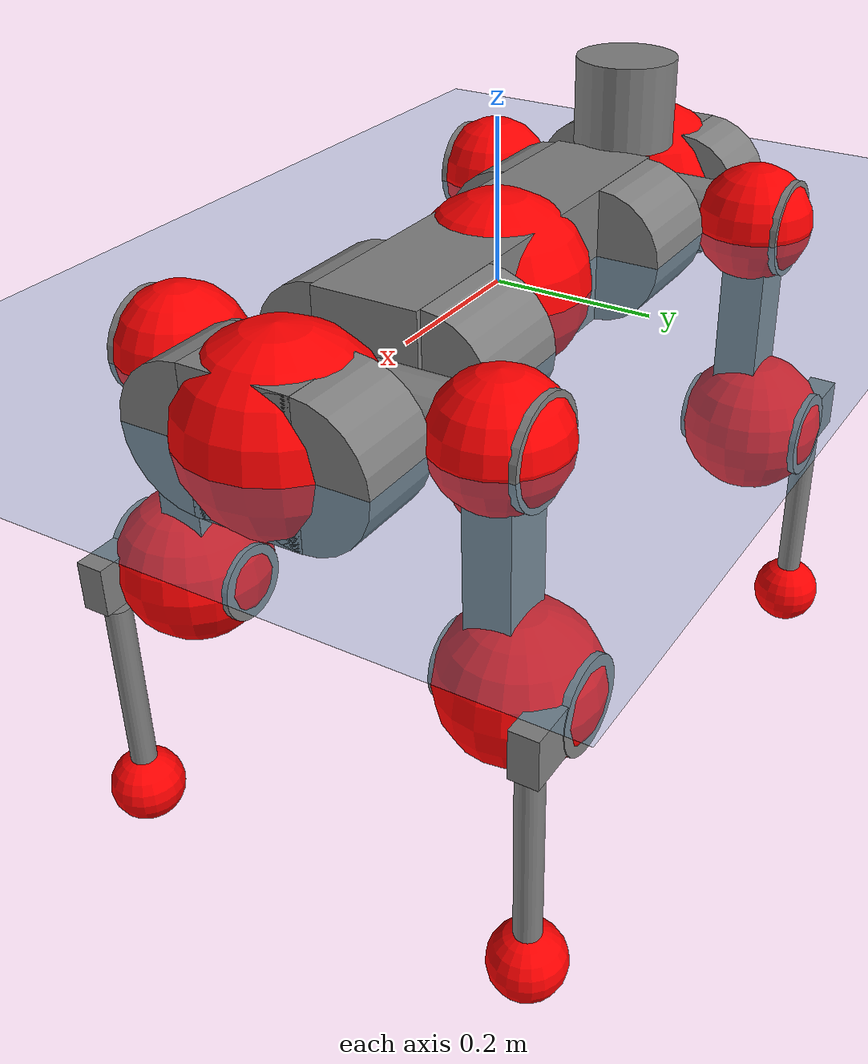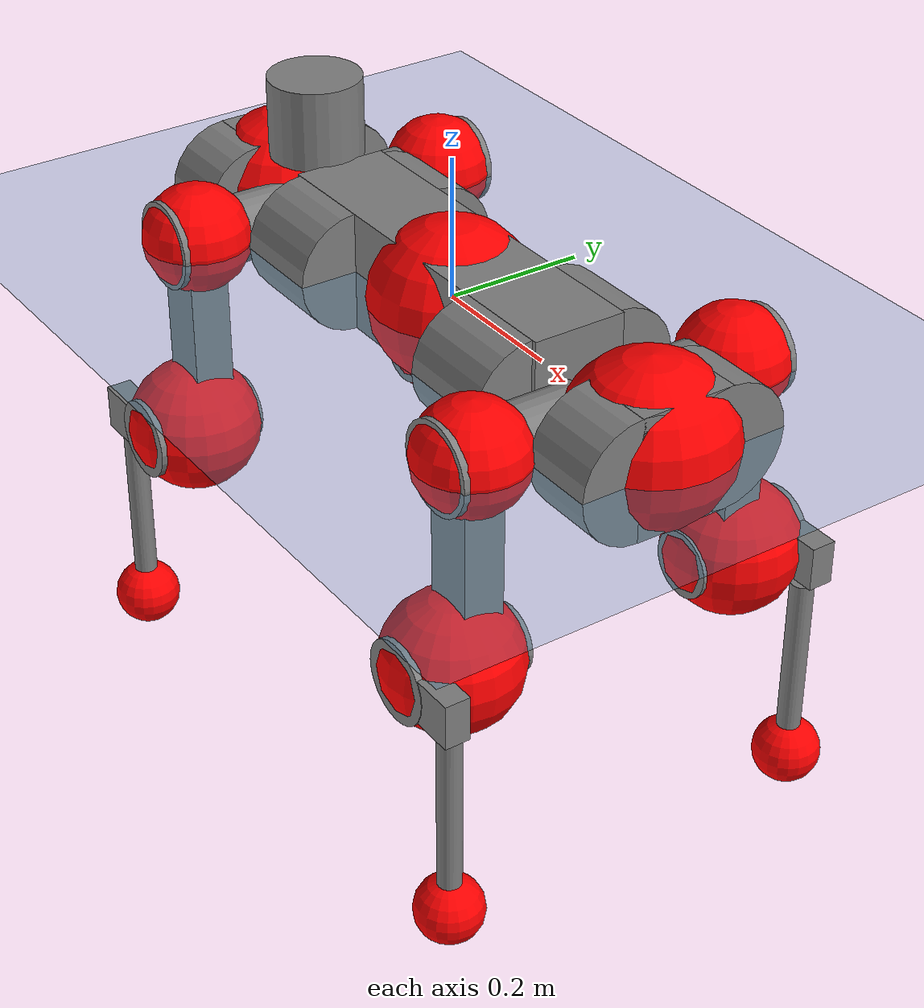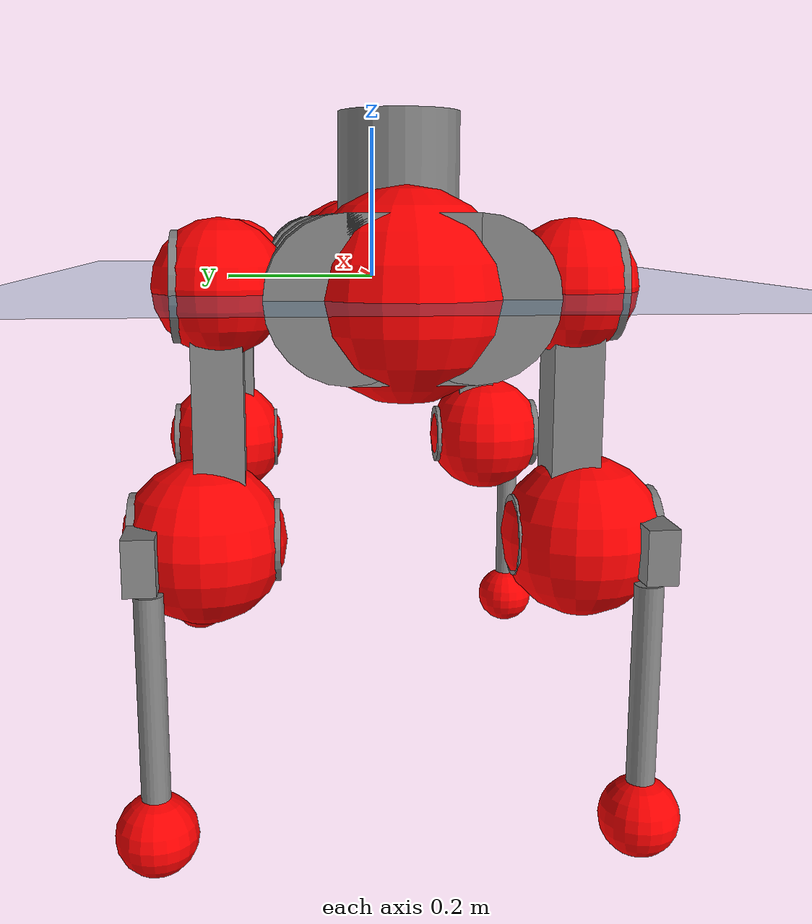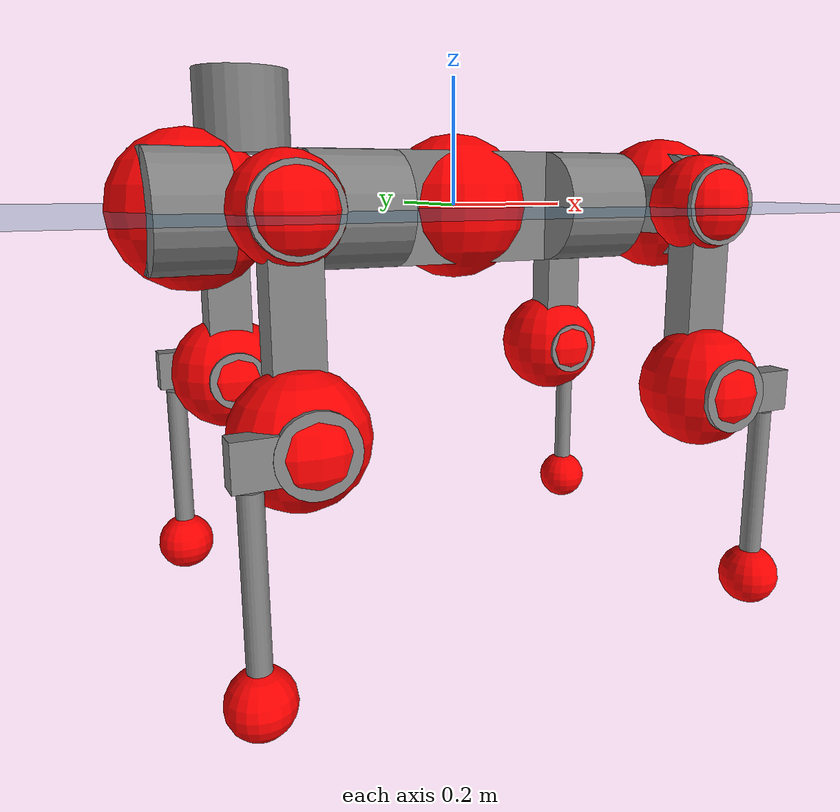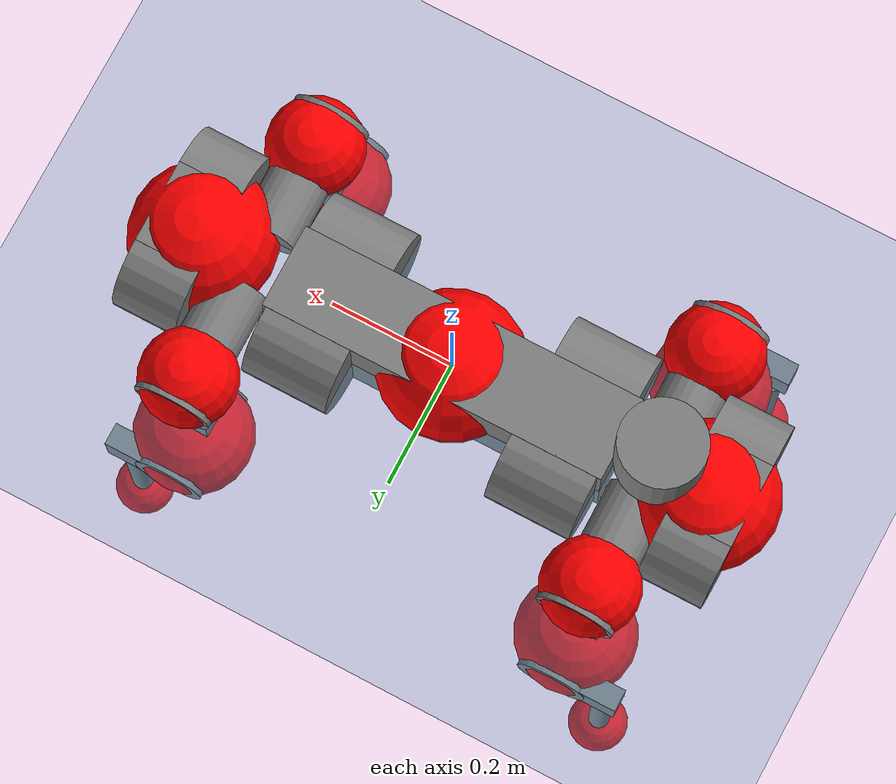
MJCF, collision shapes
<mujoco model="anymal_c">
  <compiler angle="radian" assetdir="assets" balanceinertia="true" inertiafromgeom="false"/>

  <option timestep="0.005" density="1.2" viscosity="2e-05"/>

  <size nkey="1"/>

  <visual>
    <quality shadowsize="8192"/>
    <map shadowclip="0.5"/>
  </visual>

  <default>
    <default class="/">
      <material specular="0" shininess="0.25"/>
      <geom contype="0" conaffinity="0" group="1" solref="-1000 -80"/>
      <site size="0.01 0.005 0.005" group="5"/>
      <general forcelimited="true" forcerange="-80 80" biastype="affine" gainprm="80" biasprm="0 -80 -2"/>
      <default class="anymal_c">
        <joint armature="0.01" damping="0.01" frictionloss="0.1"/>
        <default class="visual">
          <geom type="mesh" group="2"/>
          <default class="visual_zflip"/>
        </default>
        <default class="collision">
          <geom type="cylinder" group="3"/>
          <default class="foot">
            <geom size="0.03 0 0" type="sphere" condim="6" priority="1" friction="0.8 0.02 0.01" solimp="0.015 1 0.03"/>
          </default>
        </default>
      </default>
      <default class="reward_collision_sphere">
        <geom group="5" rgba="1 0 0 1"/>
      </default>
    </default>
  </default>

  <asset>
    <texture type="skybox" colorspace="auto" name="//unnamed_texture_0" builtin="gradient" rgb1="0.95 0.95 0.95" rgb2="0.95 0.95 0.95" width="100" height="600"/>
    <texture type="2d" colorspace="auto" name="texplane" builtin="checker" rgb1="0.345 0.575 0.748" rgb2="0.345 0.575 0.748" markrgb="1 1 1" width="512" height="512"/>
    <texture type="2d" colorspace="linear" name="base" file="base.png"/>
    <texture type="2d" colorspace="linear" name="top_shell" file="top_shell.png"/>
    <texture type="2d" colorspace="linear" name="bottom_shell" file="bottom_shell.png"/>
    <texture type="2d" colorspace="linear" name="remote" file="remote.png"/>
    <texture type="2d" colorspace="linear" name="hatch" file="hatch.png"/>
    <texture type="2d" colorspace="linear" name="handle" file="handle.png"/>
    <texture type="2d" colorspace="linear" name="face" file="face.png"/>
    <texture type="2d" colorspace="linear" name="battery" file="battery.png"/>
    <texture type="2d" colorspace="linear" name="lidar_cage" file="lidar_cage.png"/>
    <texture type="2d" colorspace="linear" name="depth_camera" file="depth_camera.png"/>
    <texture type="2d" colorspace="linear" name="wide_angle_camera" file="wide_angle_camera.png"/>
    <texture type="2d" colorspace="linear" name="lidar" file="lidar.png"/>
    <texture type="2d" colorspace="linear" name="drive" file="drive.png"/>
    <texture type="2d" colorspace="linear" name="hip_l" file="hip_l.png"/>
    <texture type="2d" colorspace="linear" name="shank_l" file="shank_l.png"/>
    <texture type="2d" colorspace="linear" name="foot" file="foot.png"/>
    <texture type="2d" colorspace="linear" name="thigh" file="thigh.png"/>
    <texture type="2d" colorspace="linear" name="shank_r" file="shank_r.png"/>
    <texture type="2d" colorspace="linear" name="hip_r" file="hip_r.png"/>
    <material name="MatPlane" class="/" texture="texplane" texuniform="true" texrepeat="2 2" specular="0.9" shininess="0.5"/>
    <material name="black_plastic" class="/" rgba="0.007 0.007 0.007 1"/>
    <material name="green" class="/" rgba="0.052 0.178 0.033 1"/>
    <material name="red" class="/" rgba="0.178 0.006 0.005 1"/>
    <material name="yellow" class="/" rgba="0.178 0.119 0.006 1"/>
    <material name="lwl" class="/" rgba="0.8 0.8 0.8 1"/>
    <material name="base" class="/" texture="base"/>
    <material name="top_shell" class="/" texture="top_shell"/>
    <material name="bottom_shell" class="/" texture="bottom_shell"/>
    <material name="hip_l" class="/" texture="hip_l"/>
    <material name="thigh" class="/" texture="thigh"/>
    <material name="shank_l" class="/" texture="shank_l"/>
    <material name="foot" class="/" texture="foot"/>
    <material name="hip_r" class="/" texture="hip_r"/>
    <material name="shank" class="/" texture="shank_r"/>
    <material name="hatch" class="/" texture="hatch"/>
    <material name="remote" class="/" texture="remote"/>
    <material name="handle" class="/" texture="handle"/>
    <material name="face" class="/" texture="face"/>
    <material name="depth_camera" class="/" texture="depth_camera"/>
    <material name="wide_angle_camera" class="/" texture="wide_angle_camera"/>
    <material name="battery" class="/" texture="battery"/>
    <material name="lidar_cage" class="/" texture="lidar_cage"/>
    <material name="lidar" class="/" texture="lidar"/>
    <material name="drive" class="/" texture="drive"/>
    <mesh name="base_0" class="/" file="base_0.obj"/>
    <mesh name="base_1" class="/" file="base_1.obj"/>
    <mesh name="base_2" class="/" file="base_2.obj"/>
    <mesh name="base_3" class="/" file="base_3.obj"/>
    <mesh name="base_4" class="/" file="base_4.obj"/>
    <mesh name="base_5" class="/" file="base_5.obj"/>
    <mesh name="top_shell" class="/" file="top_shell.obj"/>
    <mesh name="bottom_shell" class="/" file="bottom_shell.obj"/>
    <mesh name="remote" class="/" file="remote.obj"/>
    <mesh name="handle" class="/" file="handle.obj"/>
    <mesh name="face" class="/" file="face.obj"/>
    <mesh name="wide_angle_camera" class="/" file="wide_angle_camera.obj"/>
    <mesh name="depth_camera" class="/" file="depth_camera.obj"/>
    <mesh name="battery" class="/" file="battery.obj"/>
    <mesh name="lidar_cage" class="/" file="lidar_cage.obj"/>
    <mesh name="lidar" class="/" file="lidar.obj"/>
    <mesh name="drive" class="/" file="drive.obj"/>
    <mesh name="hip_l" class="/" file="hip_l.obj"/>
    <mesh name="thigh" class="/" file="thigh.obj"/>
    <mesh name="shank_l" class="/" file="shank_l.obj"/>
    <mesh name="foot" class="/" file="foot.obj"/>
    <mesh name="hip_r" class="/" file="hip_r.obj"/>
    <mesh name="hatch" class="/" file="hatch.obj"/>
    <mesh name="shank_r" class="/" file="shank_r.obj"/>
  </asset>

  <worldbody>
    <geom name="floor" class="/" size="100 100 0.125" type="plane" group="0" material="MatPlane"/>
    <light name="toplight_shadow" class="/" pos="0 0 5" dir="0.0990148 0.0990148 -0.990148" type="directional" ambient="0.04 0.04 0.04" diffuse="0.55 0.55 0.55" specular="0.12 0.12 0.12"/>
    <light name="toplight_fill" class="/" pos="0 0 5" dir="0.0990148 0.0990148 -0.990148" type="directional" castshadow="false" ambient="0.04 0.04 0.04" diffuse="0.3 0.3 0.3" specular="0.08 0.08 0.08"/>
    <body name="trunk" childclass="anymal_c" pos="-8.06329e-05 -7.89557e-05 -0.00158823" quat="1 -9.03322e-05 0.000130849 0.000159806">
      <inertial pos="0.0026359 0.00258157 0.0517371" quat="0.499694 0.499792 0.500433 0.500081" mass="16.5374" diaginertia="0.444951 0.412049 0.24013"/>
      <joint name="//unnamed_joint_0" type="free" armature="0" damping="0" frictionloss="0"/>
      <geom name="//unnamed_geom_1" class="visual" material="green" mesh="base_0"/>
      <geom name="//unnamed_geom_2" class="visual" material="yellow" mesh="base_1"/>
      <geom name="//unnamed_geom_3" class="visual" material="red" mesh="base_2"/>
      <geom name="//unnamed_geom_4" class="visual" material="black_plastic" mesh="base_3"/>
      <geom name="//unnamed_geom_5" class="visual" material="lwl" mesh="base_4"/>
      <geom name="//unnamed_geom_6" class="visual" material="base" mesh="base_5"/>
      <geom name="trunk_1" class="collision" size="0.277406 0.06696 0.0860914" type="box"/>
      <geom name="trunk_2" class="collision" size="0.0860914 0.0693514" pos="0.201342 0.0644657 0" quat="0.707107 0 0.707107 0"/>
      <geom name="trunk_3" class="collision" size="0.0860914 0.0693514" pos="-0.201342 0.0644657 0" quat="0.707107 0 0.707107 0"/>
      <geom name="trunk_4" class="collision" size="0.0860914 0.0693514" pos="0.201342 -0.0644657 0" quat="0.707107 0 0.707107 0"/>
      <geom name="trunk_5" class="collision" size="0.0860914 0.0693514" pos="-0.201342 -0.0644657 0" quat="0.707107 0 0.707107 0"/>
      <geom name="//unnamed_geom_12" class="visual" material="top_shell" mesh="top_shell"/>
      <geom name="//unnamed_geom_13" class="visual" material="bottom_shell" mesh="bottom_shell"/>
      <geom name="//unnamed_geom_14" class="visual" material="remote" mesh="remote"/>
      <geom name="//unnamed_geom_15" class="visual" material="handle" mesh="handle"/>
      <geom name="//unnamed_geom_16" class="visual" pos="0.383706 0 0" quat="1 0 0 0" material="face" mesh="face"/>
      <geom name="trunk_6" class="collision" size="0.0526114 0.06696 0.0860914" pos="0.43462 0 0" type="box"/>
      <geom name="//unnamed_geom_18" class="collision" size="0.0860914 0.0526114" pos="0.43462 0.0644657 0" quat="0.707107 0 0.707107 0"/>
      <geom name="//unnamed_geom_19" class="collision" size="0.0860914 0.0526114" pos="0.43462 -0.0644657 0" quat="0.707107 0 0.707107 0"/>
      <geom name="//unnamed_geom_20" class="visual" pos="0.427358 0 -0.0306134" quat="0.965926 0 0.258819 0" material="depth_camera" mesh="depth_camera"/>
      <geom name="//unnamed_geom_21" class="visual" pos="0.474889 0 0.0153153" material="wide_angle_camera" mesh="wide_angle_camera"/>
      <geom name="//unnamed_geom_22" class="visual_zflip" pos="-0.383706 0 0" quat="0 0 0 1" material="face" mesh="face"/>
      <geom name="trunk_7" class="collision" size="0.0526114 0.06696 0.0860914" pos="-0.43462 0 0" quat="0 0 0 1" type="box"/>
      <geom name="//unnamed_geom_24" class="collision" size="0.0860914 0.0526114" pos="-0.43462 -0.0644657 0" quat="0 -0.707107 0 0.707107"/>
      <geom name="//unnamed_geom_25" class="collision" size="0.0860914 0.0526114" pos="-0.43462 0.0644657 0" quat="0 -0.707107 0 0.707107"/>
      <geom name="//unnamed_geom_26" class="visual" pos="-0.427358 0 -0.0306134" quat="0 -0.258819 0 0.965926" material="depth_camera" mesh="depth_camera"/>
      <geom name="//unnamed_geom_27" class="visual_zflip" pos="-0.474889 0 0.0153153" quat="0 0 0 1" material="wide_angle_camera" mesh="wide_angle_camera"/>
      <geom name="//unnamed_geom_28" class="visual" material="battery" mesh="battery"/>
      <geom name="//unnamed_geom_29" class="visual" pos="0 0.0703564 0.0289802" quat="0.683013 -0.183013 0.183013 0.683013" material="depth_camera" mesh="depth_camera"/>
      <geom name="//unnamed_geom_30" class="visual" pos="0 -0.0703564 0.0289802" quat="0.683013 0.183013 0.183013 -0.683013" material="depth_camera" mesh="depth_camera"/>
      <geom name="//unnamed_geom_31" class="visual" pos="-0.336958 0 0.0751954" quat="1 0 0 0" material="lidar_cage" mesh="lidar_cage"/>
      <geom name="trunk_8" class="collision" size="0.06696 0.0573943" pos="-0.336958 0 0.136579"/>
      <geom name="//unnamed_geom_33" class="visual" pos="-0.336958 -1.87431e-06 0.14548" quat="0.707107 0 0 -0.707107" material="lidar" mesh="lidar"/>
      <geom name="//unnamed_geom_34" class="visual" pos="0.27762 0.0958138 -1.76172e-09" quat="0.258819 0.965926 0 0" material="drive" mesh="drive"/>
      <geom name="//unnamed_geom_35" class="visual" pos="0.27762 -0.0958138 1.76172e-09" quat="0.258819 -0.965926 0 0" material="drive" mesh="drive"/>
      <geom name="//unnamed_geom_36" class="visual" pos="-0.27762 0.0958138 1.76172e-09" quat="0 0 0.965926 -0.258819" material="drive" mesh="drive"/>
      <geom name="//unnamed_geom_37" class="visual" pos="-0.27762 -0.0958138 -1.76172e-09" quat="0 0 -0.965926 -0.258819" material="drive" mesh="drive"/>
      <geom name="//unnamed_geom_38" class="visual" pos="0.107382 0 0.0746838" quat="1 0 0 0" material="hatch" mesh="hatch"/>
      <geom name="//unnamed_geom_39" class="reward_collision_sphere" size="0.114789"/>
      <geom name="//unnamed_geom_40" class="reward_collision_sphere" size="0.114789" pos="0.416569 0 0"/>
      <geom name="//unnamed_geom_41" class="reward_collision_sphere" size="0.114789" pos="-0.416569 0 0"/>
      <site name="imu" pos="0.226083 0.00529202 0.0438445" size="0.00956571"/>
      <camera name="track" pos="0 -1.84188 0" quat="0.707107 0.707107 0 0" mode="trackcom"/>
      <camera name="ego_camera" pos="0.416569 0 -0.0409226" quat="-0.5 -0.5 0.5 0.5"/>
      <body name="LF_HIP" pos="0.27791 0.095571 -0.000155572" quat="0.25889 0.965907 -0.000152829 -0.000564425">
        <inertial pos="0.0501406 -0.0140822 -0.00858278" quat="-0.128133 0.708503 -0.134361 0.680847" mass="2.4982" diaginertia="0.00403866 0.00328585 0.00376523"/>
        <joint name="LF_HAA" pos="0 0 0" axis="1 5.42906e-05 0.000860254" range="-0.711845 0.493561" armature="0.0100205" damping="0.0120549" frictionloss="0.0847965"/>
        <geom name="//unnamed_geom_42" class="visual" pos="0 -0.000103634 1.70218e-05" quat="0.258819 -0.965926 0 0" material="hip_l" mesh="hip_l"/>
        <geom name="//unnamed_geom_43" class="visual" pos="0.05545 -0.0671629 -0.0395319" quat="0.183013 -0.683013 0.683013 0.183013" material="drive" mesh="drive"/>
        <geom name="//unnamed_geom_44" class="collision" size="0.0478286 0.06696" pos="0.05545 -0.0110142 -0.00706427" quat="-0.353553 -0.612372 0.612372 -0.353553"/>
        <body name="LF_THIGH" pos="0.0557735 -0.0664896 -0.0429031" quat="0.182934 -0.682962 0.683034 0.183202">
          <inertial pos="0.0284222 0.000390794 -0.251719" quat="0.993116 -0.00780437 -0.0804337 0.0847951" mass="2.56896" diaginertia="0.0205727 0.0196631 0.00439085"/>
          <joint name="LF_HFE" pos="0 0 0" axis="1 -7.08399e-05 -0.000239067" range="-3.17054 3.13144" armature="0.00918476" damping="0.00834708" frictionloss="0.0963263"/>
          <geom name="//unnamed_geom_45" class="visual" pos="9.49195e-05 1.49571e-07 0" quat="0.707107 0 0 -0.707107" material="thigh" mesh="thigh"/>
          <geom name="//unnamed_geom_46" class="collision" size="0.0621771 0.0382628" pos="0.0370284 0 0" quat="0.5 0.5 -0.5 -0.5"/>
          <geom name="//unnamed_geom_47" class="collision" size="0.0358714 0.0286971 0.135177" pos="0.0277713 0 -0.144574" quat="0.707107 0 0 -0.707107" type="box"/>
          <geom name="//unnamed_geom_48" class="visual" pos="0.0928486 0 -0.291574" quat="1 0 0 0" material="drive" mesh="drive"/>
          <geom name="//unnamed_geom_49" class="collision" size="0.0478286 0.06696" pos="0.028049 0 -0.291574" quat="0.707107 0 0.707107 0"/>
          <geom name="//unnamed_geom_50" class="reward_collision_sphere" size="0.0765257" pos="0.0231427 0 0"/>
          <body name="LF_SHANK" pos="0.0934739 0.0008211 -0.290379" quat="0.999999 -0.000560978 -0.00086424 -0.000891072">
            <inertial pos="0.00457184 -0.0563993 -0.0825495" quat="0.992942 -0.11593 -0.00140339 -0.024998" mass="0.5082" diaginertia="0.00691494 0.00597535 0.00123338"/>
            <joint name="LF_KFE" pos="0 0 0" axis="0.999989 -0.00459062 7.08811e-06" range="-3.14443 3.15391" armature="0.0097529" damping="0.0205382" frictionloss="0.0879639"/>
            <geom name="//unnamed_geom_51" class="visual" pos="3.09512e-05 0.000165033 0" quat="0.707107 0 0 -0.707107" material="shank_l" mesh="shank_l"/>
            <geom name="LF_kfe_act" class="collision" size="0.0573943 0.0191314" pos="0.0185142 0 0" quat="0.5 0.5 -0.5 -0.5"/>
            <geom name="//unnamed_geom_53" class="collision" size="0.0550019 0.0322843 0.0181749" pos="0.0185142 -0.052953 0" quat="0.5 0.5 -0.5 -0.5" type="box"/>
            <geom name="//unnamed_geom_54" class="visual" pos="0.0120805 -0.0809433 -0.345766" quat="0.382683 0 0 -0.92388" material="foot" mesh="foot"/>
            <geom name="LF_calf" class="collision" size="0.01674 0.135118" pos="0.0120805 -0.0809965 -0.172883" quat="0.707107 0 0 -0.707107"/>
            <geom name="LF_foot" class="foot" size="0.0311914" pos="0.0120805 -0.0809965 -0.322747" quat="0.707107 0 0 -0.707107"/>
            <geom name="//unnamed_geom_57" class="reward_collision_sphere" size="0.0956571" pos="-0.0462854 0 0"/>
            <geom name="//unnamed_geom_58" class="reward_collision_sphere" size="0.0478286" pos="0.0120805 -0.0809965 -0.322747"/>
            <site name="LF_foot" class="foot" pos="0.0120805 -0.0809965 -0.322747" quat="0.707107 0 0 -0.707107" size="0.00956571"/>
          </body>
        </body>
      </body>
      <body name="RF_HIP" pos="0.277475 -0.0969692 0.0010357" quat="0.258671 -0.965965 0.000578303 0.000762313">
        <inertial pos="0.0528978 0.0138111 -0.00781156" quat="0.134876 0.679904 0.129067 0.709141" mass="2.3273" diaginertia="0.00383507 0.00315277 0.00368488"/>
        <joint name="RF_HAA" pos="0 0 0" axis="0.999997 -0.0025431 -0.000556977" range="-0.454684 0.670286" armature="0.00954107" damping="0.00407861" frictionloss="0.0903448"/>
        <geom name="//unnamed_geom_59" class="visual" pos="0 0.000103633 1.70218e-05" quat="0.258819 0.965926 0 0" material="hip_r" mesh="hip_r"/>
        <geom name="//unnamed_geom_60" class="visual" pos="0.05545 0.0671629 -0.0395319" quat="0.183013 0.683013 0.683013 -0.183013" material="drive" mesh="drive"/>
        <geom name="//unnamed_geom_61" class="collision" size="0.0478286 0.06696" pos="0.05545 0.0110142 -0.00706427" quat="-0.353553 0.612372 0.612372 0.353553"/>
        <body name="RF_THIGH" pos="0.0583908 0.0672633 -0.0426653" quat="0.182978 0.682966 0.682984 -0.183331">
          <inertial pos="0.0290036 0.000339437 -0.251168" quat="0.992853 -0.00604491 -0.0793997 0.0888887" mass="2.77326" diaginertia="0.0205586 0.0205484 0.00479387"/>
          <joint name="RF_HFE" pos="0 0 0" axis="0.999921 -0.00192751 0.0124557" stiffness="0.00662551" range="-3.08943 3.08714" armature="0.0096878" damping="0" frictionloss="0.100595"/>
          <geom name="//unnamed_geom_62" class="visual" pos="9.49195e-05 1.49571e-07 0" quat="0.707107 0 0 -0.707107" material="thigh" mesh="thigh"/>
          <geom name="//unnamed_geom_63" class="collision" size="0.0621771 0.0382628" pos="0.0370284 0 0" quat="0.5 0.5 0.5 0.5"/>
          <geom name="//unnamed_geom_64" class="collision" size="0.0358714 0.0286971 0.135177" pos="0.0277713 0 -0.144574" quat="0.707107 0 0 0.707107" type="box"/>
          <geom name="//unnamed_geom_65" class="visual" pos="0.0928486 0 -0.291574" quat="1 0 0 0" material="drive" mesh="drive"/>
          <geom name="//unnamed_geom_66" class="collision" size="0.0478286 0.06696" pos="0.028049 0 -0.291574" quat="0.707107 0 0.707107 0"/>
          <geom name="//unnamed_geom_67" class="reward_collision_sphere" size="0.0765257" pos="0.0231427 0 0"/>
          <body name="RF_SHANK" pos="0.0953317 -0.00118506 -0.291153" quat="1 -0.000242014 4.86106e-05 0.000333335">
            <inertial pos="0.0060185 0.057459 -0.0796856" quat="0.992544 0.118524 -0.00467692 0.0280483" mass="0.496377" diaginertia="0.00695074 0.00607091 0.00124491"/>
            <joint name="RF_KFE" pos="0 0 0" axis="0.999905 0.0110645 0.00817278" range="-3.15484 3.09111" armature="0.0096452" damping="0.00670831" frictionloss="0.0829636"/>
            <geom name="//unnamed_geom_68" class="visual" pos="3.0951e-05 -0.000165033 0" quat="0.707107 0 0 0.707107" material="shank" mesh="shank_r"/>
            <geom name="RF_kfe_act" class="collision" size="0.0573943 0.0191314" pos="0.0185142 0 0" quat="0.5 0.5 0.5 0.5"/>
            <geom name="//unnamed_geom_70" class="collision" size="0.0550019 0.0322843 0.0181749" pos="0.0185142 0.052953 0" quat="0.5 0.5 0.5 0.5" type="box"/>
            <geom name="//unnamed_geom_71" class="visual" pos="0.0120805 0.0809433 -0.345766" quat="0.382683 0 0 0.92388" material="foot" mesh="foot"/>
            <geom name="RF_calf" class="collision" size="0.01674 0.135118" pos="0.0120805 0.0809965 -0.172883" quat="0.707107 0 0 0.707107"/>
            <geom name="RF_foot" class="foot" size="0.0287204" pos="0.0120805 0.0809965 -0.322747" quat="0.707107 0 0 0.707107"/>
            <geom name="//unnamed_geom_74" class="reward_collision_sphere" size="0.0956571" pos="-0.0462854 0 0"/>
            <geom name="//unnamed_geom_75" class="reward_collision_sphere" size="0.0478286" pos="0.0120805 0.0809965 -0.322747"/>
            <site name="RF_foot" class="foot" pos="0.0120805 0.0809965 -0.322747" quat="0.707107 0 0 0.707107" size="0.00956571"/>
          </body>
        </body>
      </body>
      <body name="LH_HIP" pos="-0.276228 0.0976712 0.000507639" quat="-4.06238e-05 -9.88924e-05 0.965922 -0.258834">
        <inertial pos="0.0525278 0.0115032 -0.00915761" quat="0.137517 0.688089 0.126051 0.701237" mass="2.35293" diaginertia="0.00393761 0.00330753 0.00369835"/>
        <joint name="LH_HAA" pos="0 0 0" axis="0.999979 -0.00397556 -0.00515639" range="-0.513613 0.72413" armature="0.00965582" damping="0.00343395" frictionloss="0.0968974"/>
        <geom name="//unnamed_geom_76" class="visual" pos="0 0.000103633 1.70218e-05" quat="-0.258819 -0.965926 0 0" material="hip_r" mesh="hip_r"/>
        <geom name="//unnamed_geom_77" class="visual" pos="0.05545 0.0671629 -0.0395319" quat="0.183013 0.683013 0.683013 -0.183013" material="drive" mesh="drive"/>
        <geom name="//unnamed_geom_78" class="collision" size="0.0478286 0.06696" pos="0.05545 0.0110142 -0.00706427" quat="-0.353553 0.612372 0.612372 0.353553"/>
        <body name="LH_THIGH" pos="0.0548274 0.064341 -0.0428967" quat="0.18296 0.683174 0.682765 -0.183387">
          <inertial pos="0.0294851 -0.00166601 -0.251285" quat="0.992476 -0.00683731 -0.0815573 0.0910714" mass="2.70037" diaginertia="0.0214335 0.0203129 0.00484576"/>
          <joint name="LH_HFE" pos="0 0 0" axis="0.999993 0.0031368 0.00183733" range="-3.14581 3.13362" armature="0.00940447" damping="0.0114589" frictionloss="0.0961272"/>
          <geom name="//unnamed_geom_79" class="visual" pos="9.49195e-05 1.49571e-07 0" quat="0.707107 0 0 -0.707107" material="thigh" mesh="thigh"/>
          <geom name="//unnamed_geom_80" class="collision" size="0.0621771 0.0382628" pos="0.0370284 0 0" quat="0.5 0.5 -0.5 -0.5"/>
          <geom name="//unnamed_geom_81" class="collision" size="0.0358714 0.0286971 0.135177" pos="0.0277713 0 -0.144574" quat="0.707107 0 0 -0.707107" type="box"/>
          <geom name="//unnamed_geom_82" class="visual" pos="0.0928486 0 -0.291574" quat="1 0 0 0" material="drive" mesh="drive"/>
          <geom name="//unnamed_geom_83" class="collision" size="0.0478286 0.06696" pos="0.028049 0 -0.291574" quat="0.707107 0 0.707107 0"/>
          <geom name="//unnamed_geom_84" class="reward_collision_sphere" size="0.0765257" pos="0.0231427 0 0"/>
          <body name="LH_SHANK" pos="0.0946057 -0.000558606 -0.291574" quat="1 -0.00055219 0.000592172 0.000468329">
            <inertial pos="0.00703341 0.0571618 -0.0838902" quat="0.992927 0.115953 -0.00111968 0.0254899" mass="0.515252" diaginertia="0.00722019 0.0065208 0.00133719"/>
            <joint name="LH_KFE" pos="0 0 0" axis="0.999998 0.00119809 -0.00154224" range="-3.14854 3.08857" armature="0.00952466" damping="0.0183397" frictionloss="0.0957995"/>
            <geom name="//unnamed_geom_85" class="visual" pos="3.0951e-05 -0.000165033 0" quat="-0.707107 0 0 -0.707107" material="shank" mesh="shank_r"/>
            <geom name="LH_kfe_act" class="collision" size="0.0573943 0.0191314" pos="0.0185142 0 0" quat="0.5 0.5 -0.5 -0.5"/>
            <geom name="//unnamed_geom_87" class="collision" size="0.0550019 0.0322843 0.0181749" pos="0.0185142 0.052953 0" quat="0.5 0.5 -0.5 -0.5" type="box"/>
            <geom name="//unnamed_geom_88" class="visual" pos="0.0120805 0.0809433 -0.345766" quat="-0.382683 0 0 -0.92388" material="foot" mesh="foot"/>
            <geom name="LH_calf" class="collision" size="0.01674 0.135118" pos="0.0120805 0.0809965 -0.172883" quat="0.707107 0 0 -0.707107"/>
            <geom name="LH_foot" class="foot" size="0.0270325" pos="0.0120805 0.0809965 -0.322747" quat="0.707107 0 0 -0.707107"/>
            <geom name="//unnamed_geom_91" class="reward_collision_sphere" size="0.0956571" pos="-0.0462854 0 0"/>
            <geom name="//unnamed_geom_92" class="reward_collision_sphere" size="0.0478286" pos="0.0120805 0.0809965 -0.322747"/>
            <site name="LH_foot" class="foot" pos="0.0120805 0.0809965 -0.322747" quat="0.707107 0 0 -0.707107" size="0.00956571"/>
          </body>
        </body>
      </body>
      <body name="RH_HIP" pos="-0.277374 -0.0940109 -0.00116242" quat="-0.000349558 0.000319832 -0.966248 -0.257614">
        <inertial pos="0.0514727 -0.0141634 -0.00852638" quat="-0.121746 0.702858 -0.14166 0.686368" mass="2.42862" diaginertia="0.00396929 0.00320467 0.00362505"/>
        <joint name="RH_HAA" pos="0 0 0" axis="0.999997 0.00260616 0.000242013" range="-0.771165 0.470943" armature="0.00828999" damping="0.0138131" frictionloss="0.100549"/>
        <geom name="//unnamed_geom_93" class="visual" pos="0 -0.000103634 1.70218e-05" quat="-0.258819 0.965926 0 0" material="hip_l" mesh="hip_l"/>
        <geom name="//unnamed_geom_94" class="visual" pos="0.05545 -0.0671629 -0.0395319" quat="-0.183013 0.683013 -0.683013 -0.183013" material="drive" mesh="drive"/>
        <geom name="//unnamed_geom_95" class="collision" size="0.0478286 0.06696" pos="0.05545 -0.0110142 -0.00706427" quat="0.353553 0.612372 -0.612372 0.353553"/>
        <body name="RH_THIGH" pos="0.0557014 -0.0665799 -0.0453236" quat="-0.183007 0.682996 -0.68303 -0.183019">
          <inertial pos="0.0287482 0.00260229 -0.250489" quat="0.992638 0.00278342 -0.0869764 0.0842504" mass="2.6005" diaginertia="0.0197486 0.0190849 0.00452405"/>
          <joint name="RH_HFE" pos="0 0 0" axis="0.999976 -0.00156095 -0.00675946" stiffness="0.00446573" range="-3.14889 3.09151" armature="0.0109607" damping="0.00885484" frictionloss="0.0910032"/>
          <geom name="//unnamed_geom_96" class="visual" pos="9.49195e-05 1.49571e-07 0" quat="0.707107 0 0 -0.707107" material="thigh" mesh="thigh"/>
          <geom name="//unnamed_geom_97" class="collision" size="0.0621771 0.0382628" pos="0.0370284 0 0" quat="0.5 0.5 0.5 0.5"/>
          <geom name="//unnamed_geom_98" class="collision" size="0.0358714 0.0286971 0.135177" pos="0.0277713 0 -0.144574" quat="0.707107 0 0 0.707107" type="box"/>
          <geom name="//unnamed_geom_99" class="visual" pos="0.0928486 0 -0.291574" quat="1 0 0 0" material="drive" mesh="drive"/>
          <geom name="//unnamed_geom_100" class="collision" size="0.0478286 0.06696" pos="0.028049 0 -0.291574" quat="0.707107 0 0.707107 0"/>
          <geom name="//unnamed_geom_101" class="reward_collision_sphere" size="0.0765257" pos="0.0231427 0 0"/>
          <body name="RH_SHANK" pos="0.0914314 -0.00141538 -0.292635" quat="1 0.000564145 -0.000443697 -0.000584364">
            <inertial pos="0.00532903 -0.0560989 -0.0825354" quat="0.992697 -0.119631 0.00562527 -0.0145014" mass="0.497614" diaginertia="0.00682405 0.00618455 0.00129319"/>
            <joint name="RH_KFE" pos="0 0 0" axis="0.999967 0.0058504 -0.00569433" stiffness="0.00866986" range="-3.08228 3.18482" armature="0.00932505" damping="0.00753611" frictionloss="0.0933979"/>
            <geom name="//unnamed_geom_102" class="visual" pos="3.09512e-05 0.000165033 0" quat="0.707107 0 0 -0.707107" material="shank_l" mesh="shank_l"/>
            <geom name="RH_kfe_act" class="collision" size="0.0573943 0.0191314" pos="0.0185142 0 0" quat="0.5 0.5 0.5 0.5"/>
            <geom name="//unnamed_geom_104" class="collision" size="0.0550019 0.0322843 0.0181749" pos="0.0185142 -0.052953 0" quat="0.5 0.5 0.5 0.5" type="box"/>
            <geom name="//unnamed_geom_105" class="visual" pos="0.0120805 -0.0809433 -0.345766" quat="0.382683 0 0 -0.92388" material="foot" mesh="foot"/>
            <geom name="RH_calf" class="collision" size="0.01674 0.135118" pos="0.0120805 -0.0809965 -0.172883" quat="0.707107 0 0 0.707107"/>
            <geom name="RH_foot" class="foot" size="0.0249272" pos="0.0120805 -0.0809965 -0.322747" quat="0.707107 0 0 0.707107"/>
            <geom name="//unnamed_geom_108" class="reward_collision_sphere" size="0.0956571" pos="-0.0462854 0 0"/>
            <geom name="//unnamed_geom_109" class="reward_collision_sphere" size="0.0478286" pos="0.0120805 -0.0809965 -0.322747"/>
            <site name="RH_foot" class="foot" pos="0.0120805 -0.0809965 -0.322747" quat="0.707107 0 0 0.707107" size="0.00956571"/>
          </body>
        </body>
      </body>
    </body>
  </worldbody>

  <contact>
    <pair class="/" geom1="floor" geom2="LF_foot" name="//unnamed_contact_0"/>
    <pair class="/" geom1="floor" geom2="RF_foot" name="//unnamed_contact_1"/>
    <pair class="/" geom1="floor" geom2="LH_foot" name="//unnamed_contact_2"/>
    <pair class="/" geom1="floor" geom2="RH_foot" name="//unnamed_contact_3"/>
  </contact>

  <actuator>
    <general name="LF_HAA" class="/" joint="LF_HAA" forcerange="-76.3297 76.3297" gainprm="82.2321" biasprm="0 -82.2321 -1.94946"/>
    <general name="LF_HFE" class="/" joint="LF_HFE" forcerange="-68.9868 68.9868" gainprm="82.2321" biasprm="0 -82.2321 -1.94946"/>
    <general name="LF_KFE" class="/" joint="LF_KFE" forcerange="-73.9223 73.9223" gainprm="82.2321" biasprm="0 -82.2321 -1.94946"/>
    <general name="RF_HAA" class="/" joint="RF_HAA" forcerange="-80.2043 80.2043" gainprm="82.2321" biasprm="0 -82.2321 -1.94946"/>
    <general name="RF_HFE" class="/" joint="RF_HFE" forcerange="-76.5219 76.5219" gainprm="82.2321" biasprm="0 -82.2321 -1.94946"/>
    <general name="RF_KFE" class="/" joint="RF_KFE" forcerange="-77.3259 77.3259" gainprm="82.2321" biasprm="0 -82.2321 -1.94946"/>
    <general name="LH_HAA" class="/" joint="LH_HAA" forcerange="-80.8462 80.8462" gainprm="82.2321" biasprm="0 -82.2321 -1.94946"/>
    <general name="LH_HFE" class="/" joint="LH_HFE" forcerange="-77.2463 77.2463" gainprm="82.2321" biasprm="0 -82.2321 -1.94946"/>
    <general name="LH_KFE" class="/" joint="LH_KFE" forcerange="-77.301 77.301" gainprm="82.2321" biasprm="0 -82.2321 -1.94946"/>
    <general name="RH_HAA" class="/" joint="RH_HAA" forcerange="-69.23 69.23" gainprm="82.2321" biasprm="0 -82.2321 -1.94946"/>
    <general name="RH_HFE" class="/" joint="RH_HFE" forcerange="-78.5836 78.5836" gainprm="82.2321" biasprm="0 -82.2321 -1.94946"/>
    <general name="RH_KFE" class="/" joint="RH_KFE" forcerange="-79.3721 79.3721" gainprm="82.2321" biasprm="0 -82.2321 -1.94946"/>
  </actuator>

  <sensor>
    <gyro site="imu" name="imu_angular_velocity"/>
    <velocimeter site="imu" name="imu_linear_velocity"/>
    <framelinvel objtype="site" objname="LF_foot" name="LF_foot_global_linear_velocity"/>
    <framelinvel objtype="site" objname="RF_foot" name="RF_foot_global_linear_velocity"/>
    <framelinvel objtype="site" objname="LH_foot" name="LH_foot_global_linear_velocity"/>
    <framelinvel objtype="site" objname="RH_foot" name="RH_foot_global_linear_velocity"/>
  </sensor>

  <keyframe>
    <key name="home" qpos="0 0 0.55 1 0 0 0 0 0.4 -0.8 0 -0.4 0.8 0 -0.4 0.8 0 0.4 -0.8"/>
  </keyframe>
</mujoco>
